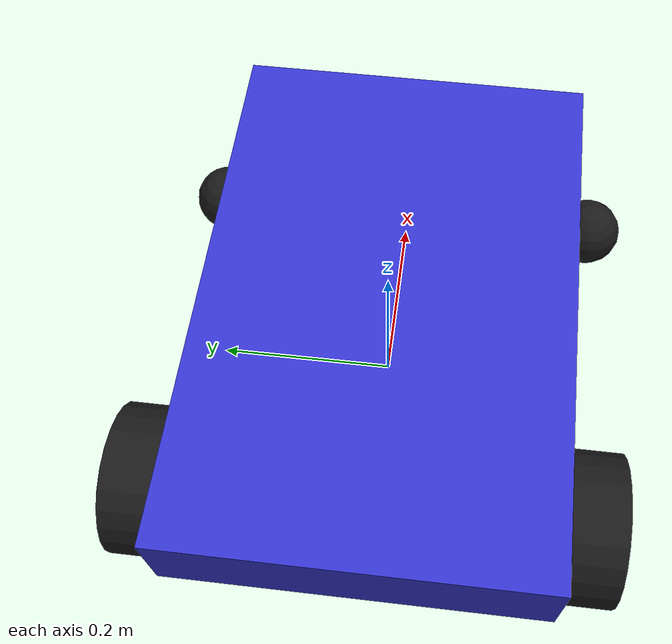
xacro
<?xml version="1.0"?>
<robot xmlns:xacro="http://www.ros.org/wiki/xacro" name="four_wheel_robot_base">

    <!-- 属性定义 Properties -->
    <xacro:property name="chassis_length" value="0.6" />
    <xacro:property name="chassis_width" value="0.4" />
    <xacro:property name="chassis_height" value="0.1" />
    <xacro:property name="chassis_mass" value="10.0" />

    <xacro:property name="wheel_radius" value="0.08" />
    <xacro:property name="wheel_length" value="0.06" />
    <xacro:property name="wheel_mass" value="1.0" />
    <xacro:property name="wheel_offset_x" value="0.2" />
    <xacro:property name="wheel_offset_y" value="0.23" />

    <!-- 万向轮属性 -->
    <xacro:property name="caster_radius" value="0.04" />
    <xacro:property name="caster_mass" value="0.5" />

    <!-- 材料定义 Materials -->
    <material name="chassis_material">
        <color rgba="0.2 0.2 0.8 1.0"/>
    </material>

    <material name="wheel_material">
        <color rgba="0.1 0.1 0.1 1.0"/>
    </material>

    <!-- 惯性矩阵计算宏 Inertial Macro -->
    <xacro:macro name="box_inertial" params="mass x y z">
        <inertial>
            <origin xyz="0 0 0" rpy="0 0 0"/>
            <mass value="${mass}"/>
            <inertia ixx="${mass*(y*y+z*z)/12}" ixy="0" ixz="0"
                     iyy="${mass*(x*x+z*z)/12}" iyz="0"
                     izz="${mass*(x*x+y*y)/12}"/>
        </inertial>
    </xacro:macro>

    <xacro:macro name="cylinder_inertial" params="mass radius height">
        <inertial>
            <origin xyz="0 0 0" rpy="0 0 0"/>
            <mass value="${mass}"/>
            <inertia ixx="${mass*(3*radius*radius+height*height)/12}" ixy="0" ixz="0"
                     iyy="${mass*(3*radius*radius+height*height)/12}" iyz="0"
                     izz="${mass*radius*radius/2}"/>
        </inertial>
    </xacro:macro>

    <!-- 虚拟的base_footprint链接 -->
    <link name="base_footprint">
    </link>

    <!-- 机器人底盘 Base Link -->
    <link name="base_link">
        <visual>
            <origin xyz="0 0 0" rpy="0 0 0"/>
            <geometry>
                <box size="${chassis_length} ${chassis_width} ${chassis_height}"/>
            </geometry>
            <material name="chassis_material"/>
        </visual>
        <collision>
            <origin xyz="0 0 0" rpy="0 0 0"/>
            <geometry>
                <box size="${chassis_length} ${chassis_width} ${chassis_height}"/>
            </geometry>
        </collision>
        <xacro:box_inertial mass="${chassis_mass}"
                           x="${chassis_length}"
                           y="${chassis_width}"
                           z="${chassis_height}"/>
    </link>

    <!-- base_footprint到base_link的关节 -->
    <joint name="base_footprint_joint" type="fixed">
        <parent link="base_footprint"/>
        <child link="base_link"/>
        <origin xyz="0 0 ${wheel_radius + chassis_height/2}" rpy="0 0 0"/>
    </joint>

    <!-- 后轮宏定义（驱动轮） -->
    <xacro:macro name="rear_wheel" params="prefix x_pos y_pos">
        <link name="${prefix}_wheel">
            <visual>
                <origin xyz="0 0 0" rpy="1.5708 0 0"/>
                <geometry>
                    <cylinder radius="${wheel_radius}" length="${wheel_length}"/>
                </geometry>
                <material name="wheel_material"/>
            </visual>
            <collision>
                <origin xyz="0 0 0" rpy="1.5708 0 0"/>
                <geometry>
                    <cylinder radius="${wheel_radius}" length="${wheel_length}"/>
                </geometry>
            </collision>
            <inertial>
                <origin xyz="0 0 0" rpy="1.5708 0 0"/>
                <mass value="${wheel_mass}"/>
                <inertia ixx="0.003" ixy="0" ixz="0"
                         iyy="0.003" iyz="0" izz="0.005"/>
            </inertial>
        </link>

        <joint name="${prefix}_wheel_joint" type="continuous">
            <parent link="base_link"/>
            <child link="${prefix}_wheel"/>
            <origin xyz="${x_pos} ${y_pos} ${-chassis_height/2}" rpy="0 0 0"/>
            <axis xyz="0 1 0"/>
            <dynamics damping="0.1" friction="0.1"/>
        </joint>
    </xacro:macro>

    <!-- 万向轮宏定义（前轮） -->
    <xacro:macro name="caster_wheel" params="prefix x_pos y_pos">
        <!-- 使用球形万向轮 -->
        <link name="${prefix}_caster_wheel">
            <visual>
                <origin xyz="0 0 0" rpy="0 0 0"/>
                <geometry>
                    <sphere radius="${caster_radius}"/>
                </geometry>
                <material name="wheel_material"/>
            </visual>
            <collision>
                <origin xyz="0 0 0" rpy="0 0 0"/>
                <geometry>
                    <sphere radius="${caster_radius}"/>
                </geometry>
                <surface>
                    <friction>
                        <ode>
                            <mu>0.01</mu>
                            <mu2>0.01</mu2>
                        </ode>
                    </friction>
                </surface>
            </collision>
            <inertial>
                <origin xyz="0 0 0" rpy="0 0 0"/>
                <mass value="${caster_mass}"/>
                <inertia ixx="${2*caster_mass*caster_radius*caster_radius/5}" ixy="0" ixz="0"
                         iyy="${2*caster_mass*caster_radius*caster_radius/5}" iyz="0"
                         izz="${2*caster_mass*caster_radius*caster_radius/5}"/>
            </inertial>
        </link>

        <joint name="${prefix}_caster_joint" type="fixed">
            <parent link="base_link"/>
            <child link="${prefix}_caster_wheel"/>
            <!-- 调整高度以匹配后轮接触地面 -->
            <origin xyz="${x_pos} ${y_pos} ${-chassis_height/2 - wheel_radius + caster_radius}" rpy="0 0 0"/>
        </joint>

        <!-- Gazebo配置 -->
        <gazebo reference="${prefix}_caster_wheel">
            <material>Gazebo/Black</material>
            <mu1>0.01</mu1>
            <mu2>0.01</mu2>
            <kp>1000000.0</kp>
            <kd>100.0</kd>
            <minDepth>0.001</minDepth>
            <maxVel>1.0</maxVel>
        </gazebo>
    </xacro:macro>

    <!-- 创建两个后轮（驱动轮） -->
    <xacro:rear_wheel prefix="rear_left" x_pos="${-wheel_offset_x}" y_pos="${wheel_offset_y}"/>
    <xacro:rear_wheel prefix="rear_right" x_pos="${-wheel_offset_x}" y_pos="${-wheel_offset_y}"/>

    <!-- 创建两个前轮（万向轮） -->
    <xacro:caster_wheel prefix="front_left" x_pos="${wheel_offset_x}" y_pos="${wheel_offset_y}"/>
    <xacro:caster_wheel prefix="front_right" x_pos="${wheel_offset_x}" y_pos="${-wheel_offset_y}"/>

</robot>
